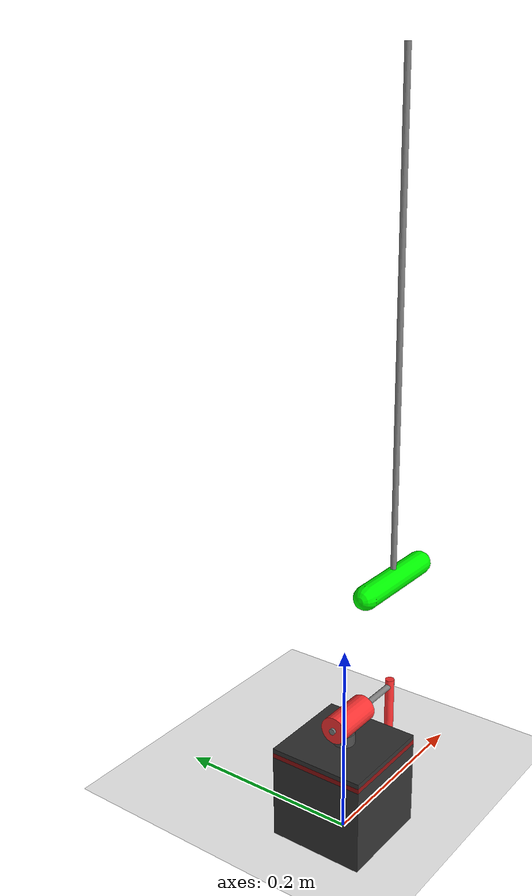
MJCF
<?xml version="1.0" encoding="utf-8"?>
<mujoco model="qube_servo3">
  <compiler angle="radian" inertiafromgeom="true"/>
  <option timestep="0.001" gravity="0 0 -9.82"/>

  <asset>
    <material name="cube_mat" rgba="0.2 0.2 0.2 1"/>
    <material name="arm_mat" rgba="0.5 0.5 0.5 1"/>
    <material name="pendulum_mat" rgba="1.0 0.2 0.2 1"/>
    <material name="joint_mat" rgba="0.3 0.3 0.3 1"/>
    <material name="led" rgba="1.0 0.0 0.0 0.5"/>
    <material name="floor" rgba="1 1 1 1"/>
    <material name="impact_target" rgba="0.0 1.0 0.0 1"/>
  </asset>

  <worldbody>
    <!-- Floor -->
    <geom type="plane" size="1 1 0.05" material="floor" pos="0 0 -0.0001"/>

    <!-- Base fixed to world -->
    <body name="cube" pos="0 0 0.0501">
      <geom type="box"
            size="0.0501 0.0501 0.0501"
            mass="5.0"
            material="cube_mat"/>

      <geom type="box"
            size="0.05011"
            fromto="0 0 0.045 0 0 0.04"
            material="led"/>
    </body>

    <!-- Motor axis body: rotates around z-axis by theta -->
    <body name="motor_axis" pos="0 0 0.123">
      <joint name="theta"
             type="hinge"
             pos="0 0 0"
             axis="0 0 1"
             limited="true"
              range="-2.35619 2.35619"
             damping="0.00001"/>

      <!-- Motor shaft / axis visual, rotates with theta -->
      <geom type="cylinder"
            size="0.011"
            fromto="0 0 -0.0228 0 0 -0.011"
            mass="0.0106"
            material="joint_mat"/>

      <!-- Visual encoder attached to motor axis, negligible mass -->
      <geom type="cylinder"
            size="0.014"
            fromto="-0.019 0 0 0.033 0 0"
            mass="0.000001"
            contype="0"
            conaffinity="0"
            material="pendulum_mat"/>

      <!-- Arm body: connected to motor_axis through alpha hinge -->
      <body name="arm" pos="0 0 0">
        <joint name="alpha"
               type="hinge"
               pos="0 0 0"
               axis="1 0 0"
               damping="0.00001"/>

        <!-- Arm geometry: rotates with alpha -->
        <geom type="cylinder"
              size="0.00325"
              fromto="0.0886 0 0 -0.0215 0 0"
              mass="0.095"
              material="arm_mat"/>

        <!-- Pendulum rigidly attached to the end of the arm -->
        <body name="pendulum" pos="0.08385 0 0">
          <geom type="cylinder"
                size="0.00475"
                fromto="0 0 0.0075 0 0 -0.1215"
                mass="0.024"
                material="pendulum_mat"/>
          <geom
            name="impact_target"
            type="cylinder"
            fromto="0 0 -0.1165 0 0 -0.1215"
            size="0.005"
            mass="0.000001"
            material="impact_target"
            contype="1"
            conaffinity="1"
            solref="0.001 1"
            solimp="0.99 0.999 0.001"
          />
        </body>
      </body>
    </body>

    <!-- Disturbance pendulum for testing -->
    <body name="disturbance_mount" pos="0.085 0 0.7445">
      <!-- Hinge for striker pendulum -->
      <joint
          name="pendulum"
          type="hinge"
          axis="1 0 0"
          damping="0.0001"
      />
      <!-- Weightless rod (~1g) -->
      <geom
          name="disturbance_rod"
          type="cylinder"
          fromto="0 0 0 0 0 -0.5"
          size="0.003"
          mass="0.000001"

          material="arm_mat"
      />
      <!-- 200g impact mass -->
      <body name="disturbance_mass" pos="0 0 -0.5">
          <geom
              name="disturbance_capsule"
              type="capsule"
              size="0.0125"
              fromto="0.05 0 0 -0.05 0 0"
              mass="0.046"
              material="impact_target"
              contype="1"
              conaffinity="1"
              solref="0.001 1"
              solimp="0.99 0.999 0.001"
          />
      </body>
    </body>
  </worldbody>

  <actuator>
    <motor name="arm_motor"
           joint="theta"
           gear="1.0"
           ctrlrange="-0.1 0.1"/>
  </actuator>
</mujoco>
